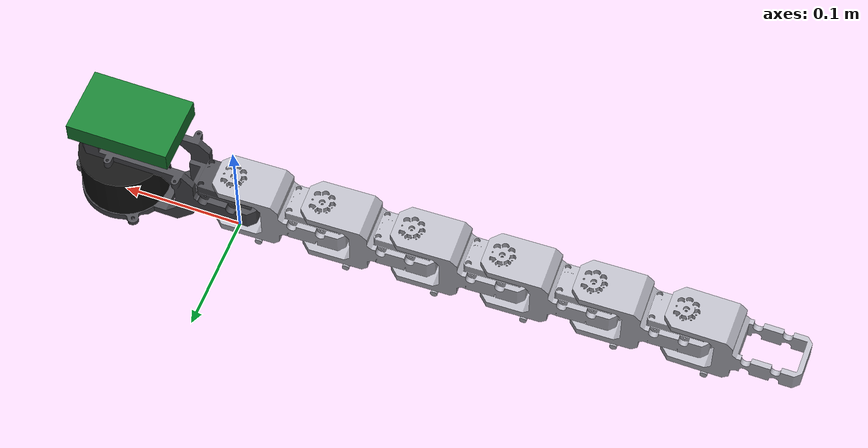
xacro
<?xml version="1.0"?>
<robot name="snakebot" xmlns:xacro="http://www.ros.org/wiki/xacro">

  <xacro:arg name="hw" default="mock"/>
  <xacro:arg name="usb_port" default="/dev/ttyUSB0"/>
  <xacro:arg name="baud_rate" default="57600"/>

  <!-- ===== Masses (weighed, kg) ===== -->
  <xacro:property name="m_base_link" value="0.110"/>  <!-- head bracket + servo 1 -->
  <xacro:property name="m_seg1" value="0.090"/>
  <xacro:property name="m_seg2" value="0.090"/>
  <xacro:property name="m_seg3" value="0.090"/>
  <xacro:property name="m_seg4" value="0.090"/>
  <xacro:property name="m_seg5" value="0.090"/>
  <xacro:property name="m_tail" value="0.070"/>
  <xacro:property name="m_pi5" value="0.046"/>        <!-- Raspberry Pi 5 bare board -->
  <xacro:property name="m_lidar" value="0.185"/>      <!-- YDLIDAR G2 datasheet -->

  <!-- ===== Joints (XM430-W350 @ 12 V: 4.1 N·m stall, 46 rpm no-load) ===== -->
  <xacro:property name="joint_limit" value="${radians(60)}"/>  <!-- stops measured 2026-10-05: joint1 -70 (seg1 hits the lidar UART adapter) / +95 deg, joints 2-6 ~+/-100 deg; 10 deg margin on the tightest -->
  <xacro:property name="joint_effort" value="4.1"/>
  <xacro:property name="joint_velocity" value="4.8"/>     <!-- rad/s -->
  <xacro:property name="joint_damping" value="0.05"/>
  <xacro:property name="joint_friction" value="0.01"/>

  <!-- ===== Lidar geometry ===== -->
  <xacro:property name="lidar_body_r" value="0.036"/>       <!-- visual/inertia approximation -->
  <xacro:property name="lidar_body_h" value="0.040"/>
  <xacro:property name="lidar_scan_height" value="0.030"/>  <!-- TODO: measure mount plate -> scan window centre -->
  <xacro:property name="lidar_yaw" value="0.0"/>            <!-- G2 zero = cable outlet direction; 0 if it faces forward -->

  <!-- ===== Ground contact (passive bearing wheels emulated with anisotropic friction) ===== -->
  <xacro:property name="mu_along" value="0.1"/>    <!-- rolling direction, along the body -->
  <xacro:property name="mu_across" value="1.0"/>   <!-- sideways, wheels resist slipping -->

  <xacro:property name="color_head" value="dark_grey"/>
  <xacro:property name="color_body" value="light_grey"/>

  <xacro:include filename="$(find snakebot_description)/urdf/materials.xacro"/>
  <xacro:include filename="$(find snakebot_description)/urdf/snakebot_core.xacro"/>
  <xacro:include filename="$(find snakebot_description)/urdf/snakebot.ros2_control.xacro"/>
  <xacro:include filename="$(find snakebot_description)/urdf/snakebot.gazebo.xacro"/>

  <xacro:snakebot_ros2_control hw="$(arg hw)" usb_port="$(arg usb_port)" baud_rate="$(arg baud_rate)"/>

  <xacro:if value="${'$(arg hw)' == 'gz'}">
    <xacro:snakebot_gazebo/>
  </xacro:if>

</robot>

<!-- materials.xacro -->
<robot xmlns:xacro="http://www.ros.org/wiki/xacro">
  <material name="light_grey"><color rgba="0.72 0.72 0.76 1.0"/></material>
  <material name="dark_grey"><color rgba="0.30 0.30 0.32 1.0"/></material>
  <material name="black"><color rgba="0.08 0.08 0.08 1.0"/></material>
  <material name="pcb_green"><color rgba="0.10 0.50 0.20 1.0"/></material>
</robot>

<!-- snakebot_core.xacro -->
<!-- AUTO-GENERATED by gen.py from the Fusion meshes. Edit snakebot.urdf.xacro for settings. -->
<robot xmlns:xacro="http://www.ros.org/wiki/xacro">

  <link name="base_link">
    <inertial>
      <origin xyz="0.051785 0.000018 0.046945" rpy="0 0 0"/>
      <mass value="${m_base_link}"/>
      <inertia ixx="9.0997e-05" iyy="2.9248e-04" izz="2.3976e-04" ixy="-1.4474e-06" ixz="-1.3283e-05" iyz="6.0904e-07"/>
    </inertial>
    <visual>
      <origin xyz="0.000000 0.000000 0.000000" rpy="0 0 ${-pi/2}"/>
      <geometry><mesh filename="file://$(find snakebot_description)/meshes/base_link.stl" scale="0.001 0.001 0.001"/></geometry>
      <material name="${color_head}"/>
    </visual>
    <collision>
      <origin xyz="0.000000 0.000000 0.000000" rpy="0 0 ${-pi/2}"/>
      <geometry><mesh filename="file://$(find snakebot_description)/meshes/base_link.stl" scale="0.001 0.001 0.001"/></geometry>
    </collision>
  </link>

  <link name="seg1">
    <inertial>
      <origin xyz="-0.049115 -0.001257 -0.022258" rpy="0 0 0"/>
      <mass value="${m_seg1}"/>
      <inertia ixx="2.8940e-05" iyy="8.5347e-05" izz="7.5605e-05" ixy="-1.4134e-06" ixz="3.7939e-06" iyz="9.2217e-08"/>
    </inertial>
    <visual>
      <origin xyz="-0.001587 0.000408 -0.064200" rpy="0 0 ${-pi/2}"/>
      <geometry><mesh filename="file://$(find snakebot_description)/meshes/seg1.stl" scale="0.001 0.001 0.001"/></geometry>
      <material name="${color_body}"/>
    </visual>
    <collision>
      <origin xyz="-0.001587 0.000408 -0.064200" rpy="0 0 ${-pi/2}"/>
      <geometry><mesh filename="file://$(find snakebot_description)/meshes/seg1.stl" scale="0.001 0.001 0.001"/></geometry>
    </collision>
  </link>

  <link name="seg2">
    <inertial>
      <origin xyz="-0.048999 -0.001339 -0.022228" rpy="0 0 0"/>
      <mass value="${m_seg2}"/>
      <inertia ixx="2.8940e-05" iyy="8.5347e-05" izz="7.5605e-05" ixy="-1.4134e-06" ixz="3.7939e-06" iyz="9.2217e-08"/>
    </inertial>
    <visual>
      <origin xyz="0.073255 0.002218 -0.063800" rpy="0 0 ${-pi/2}"/>
      <geometry><mesh filename="file://$(find snakebot_description)/meshes/seg2.stl" scale="0.001 0.001 0.001"/></geometry>
      <material name="${color_body}"/>
    </visual>
    <collision>
      <origin xyz="0.073255 0.002218 -0.063800" rpy="0 0 ${-pi/2}"/>
      <geometry><mesh filename="file://$(find snakebot_description)/meshes/seg2.stl" scale="0.001 0.001 0.001"/></geometry>
    </collision>
  </link>

  <link name="seg3">
    <inertial>
      <origin xyz="-0.048998 -0.001262 -0.022198" rpy="0 0 0"/>
      <mass value="${m_seg3}"/>
      <inertia ixx="2.8939e-05" iyy="8.5348e-05" izz="7.5605e-05" ixy="-1.3948e-06" ixz="3.7939e-06" iyz="9.0963e-08"/>
    </inertial>
    <visual>
      <origin xyz="0.147982 0.004171 -0.063400" rpy="0 0 ${-pi/2}"/>
      <geometry><mesh filename="file://$(find snakebot_description)/meshes/seg3.stl" scale="0.001 0.001 0.001"/></geometry>
      <material name="${color_body}"/>
    </visual>
    <collision>
      <origin xyz="0.147982 0.004171 -0.063400" rpy="0 0 ${-pi/2}"/>
      <geometry><mesh filename="file://$(find snakebot_description)/meshes/seg3.stl" scale="0.001 0.001 0.001"/></geometry>
    </collision>
  </link>

  <link name="seg4">
    <inertial>
      <origin xyz="-0.049109 -0.001245 -0.022168" rpy="0 0 0"/>
      <mass value="${m_seg4}"/>
      <inertia ixx="2.8938e-05" iyy="8.5349e-05" izz="7.5605e-05" ixy="-1.3578e-06" ixz="3.7940e-06" iyz="8.8479e-08"/>
    </inertial>
    <visual>
      <origin xyz="0.222600 0.006022 -0.063000" rpy="0 0 ${-pi/2}"/>
      <geometry><mesh filename="file://$(find snakebot_description)/meshes/seg4.stl" scale="0.001 0.001 0.001"/></geometry>
      <material name="${color_body}"/>
    </visual>
    <collision>
      <origin xyz="0.222600 0.006022 -0.063000" rpy="0 0 ${-pi/2}"/>
      <geometry><mesh filename="file://$(find snakebot_description)/meshes/seg4.stl" scale="0.001 0.001 0.001"/></geometry>
    </collision>
  </link>

  <link name="seg5">
    <inertial>
      <origin xyz="-0.049078 -0.001138 -0.022238" rpy="0 0 0"/>
      <mass value="${m_seg5}"/>
      <inertia ixx="2.8934e-05" iyy="8.5353e-05" izz="7.5605e-05" ixy="-1.2725e-06" ixz="3.7941e-06" iyz="8.2740e-08"/>
    </inertial>
    <visual>
      <origin xyz="0.297361 0.007873 -0.062700" rpy="0 0 ${-pi/2}"/>
      <geometry><mesh filename="file://$(find snakebot_description)/meshes/seg5.stl" scale="0.001 0.001 0.001"/></geometry>
      <material name="${color_body}"/>
    </visual>
    <collision>
      <origin xyz="0.297361 0.007873 -0.062700" rpy="0 0 ${-pi/2}"/>
      <geometry><mesh filename="file://$(find snakebot_description)/meshes/seg5.stl" scale="0.001 0.001 0.001"/></geometry>
    </collision>
  </link>

  <link name="tail">
    <inertial>
      <origin xyz="-0.033705 -0.000052 -0.023434" rpy="0 0 0"/>
      <mass value="${m_tail}"/>
      <inertia ixx="3.0193e-05" iyy="5.9335e-05" izz="4.8131e-05" ixy="1.8217e-13" ixz="1.8038e-06" iyz="-1.9926e-14"/>
    </inertial>
    <visual>
      <origin xyz="0.372127 0.009478 -0.062300" rpy="0 0 ${-pi/2}"/>
      <geometry><mesh filename="file://$(find snakebot_description)/meshes/tail.stl" scale="0.001 0.001 0.001"/></geometry>
      <material name="${color_body}"/>
    </visual>
    <collision>
      <origin xyz="0.372127 0.009478 -0.062300" rpy="0 0 ${-pi/2}"/>
      <geometry><mesh filename="file://$(find snakebot_description)/meshes/tail.stl" scale="0.001 0.001 0.001"/></geometry>
    </collision>
  </link>

  <joint name="joint1" type="revolute">
    <parent link="base_link"/>
    <child link="seg1"/>
    <origin xyz="0.001587 -0.000408 0.064200" rpy="0 0 0"/>
    <axis xyz="0 0 1"/>
    <limit lower="${-joint_limit}" upper="${joint_limit}" effort="${joint_effort}" velocity="${joint_velocity}"/>
    <dynamics damping="${joint_damping}" friction="${joint_friction}"/>
  </joint>

  <joint name="joint2" type="revolute">
    <parent link="seg1"/>
    <child link="seg2"/>
    <origin xyz="-0.074842 -0.001809 -0.000400" rpy="0 0 0"/>
    <axis xyz="0 0 1"/>
    <limit lower="${-joint_limit}" upper="${joint_limit}" effort="${joint_effort}" velocity="${joint_velocity}"/>
    <dynamics damping="${joint_damping}" friction="${joint_friction}"/>
  </joint>

  <joint name="joint3" type="revolute">
    <parent link="seg2"/>
    <child link="seg3"/>
    <origin xyz="-0.074728 -0.001953 -0.000400" rpy="0 0 0"/>
    <axis xyz="0 0 1"/>
    <limit lower="${-joint_limit}" upper="${joint_limit}" effort="${joint_effort}" velocity="${joint_velocity}"/>
    <dynamics damping="${joint_damping}" friction="${joint_friction}"/>
  </joint>

  <joint name="joint4" type="revolute">
    <parent link="seg3"/>
    <child link="seg4"/>
    <origin xyz="-0.074618 -0.001851 -0.000400" rpy="0 0 0"/>
    <axis xyz="0 0 1"/>
    <limit lower="${-joint_limit}" upper="${joint_limit}" effort="${joint_effort}" velocity="${joint_velocity}"/>
    <dynamics damping="${joint_damping}" friction="${joint_friction}"/>
  </joint>

  <joint name="joint5" type="revolute">
    <parent link="seg4"/>
    <child link="seg5"/>
    <origin xyz="-0.074761 -0.001851 -0.000300" rpy="0 0 0"/>
    <axis xyz="0 0 1"/>
    <limit lower="${-joint_limit}" upper="${joint_limit}" effort="${joint_effort}" velocity="${joint_velocity}"/>
    <dynamics damping="${joint_damping}" friction="${joint_friction}"/>
  </joint>

  <joint name="joint6" type="revolute">
    <parent link="seg5"/>
    <child link="tail"/>
    <origin xyz="-0.074766 -0.001606 -0.000400" rpy="0 0 0"/>
    <axis xyz="0 0 1"/>
    <limit lower="${-joint_limit}" upper="${joint_limit}" effort="${joint_effort}" velocity="${joint_velocity}"/>
    <dynamics damping="${joint_damping}" friction="${joint_friction}"/>
  </joint>

  <!-- Raspberry Pi 5 (placed on top of the head hood; box approximation) -->
  <joint name="pi5_joint" type="fixed">
    <parent link="base_link"/>
    <child link="pi5"/>
    <origin xyz="0.087012 -0.000089 0.103085" rpy="0 0 0"/>
  </joint>
  <link name="pi5">
    <inertial>
      <mass value="${m_pi5}"/>
      <inertia ixx="${m_pi5*(0.056**2+0.017**2)/12}" iyy="${m_pi5*(0.085**2+0.017**2)/12}" izz="${m_pi5*(0.085**2+0.056**2)/12}" ixy="0" ixz="0" iyz="0"/>
    </inertial>
    <visual>
      <geometry><box size="0.085 0.056 0.017"/></geometry>
      <material name="pcb_green"/>
    </visual>
  </link>

  <!-- YDLIDAR G2 on the round mount plate of the head -->
  <joint name="lidar_joint" type="fixed">
    <parent link="base_link"/>
    <child link="lidar"/>
    <origin xyz="0.097492 0.000960 0.019335" rpy="0 0 0"/>
  </joint>
  <link name="lidar">
    <inertial>
      <origin xyz="0 0 ${lidar_body_h/2}"/>
      <mass value="${m_lidar}"/>
      <inertia ixx="${m_lidar*(3*lidar_body_r**2+lidar_body_h**2)/12}" iyy="${m_lidar*(3*lidar_body_r**2+lidar_body_h**2)/12}" izz="${m_lidar*lidar_body_r**2/2}" ixy="0" ixz="0" iyz="0"/>
    </inertial>
    <visual>
      <origin xyz="0 0 ${lidar_body_h/2}"/>
      <geometry><cylinder radius="${lidar_body_r}" length="${lidar_body_h}"/></geometry>
      <material name="black"/>
    </visual>
  </link>

  <!-- laser frame: scan plane. x = lidar zero angle (G2: direction of the cable outlet) -->
  <joint name="laser_joint" type="fixed">
    <parent link="lidar"/>
    <child link="laser"/>
    <origin xyz="0 0 ${lidar_scan_height}" rpy="0 0 ${lidar_yaw}"/>
  </joint>
  <link name="laser"/>

</robot>
